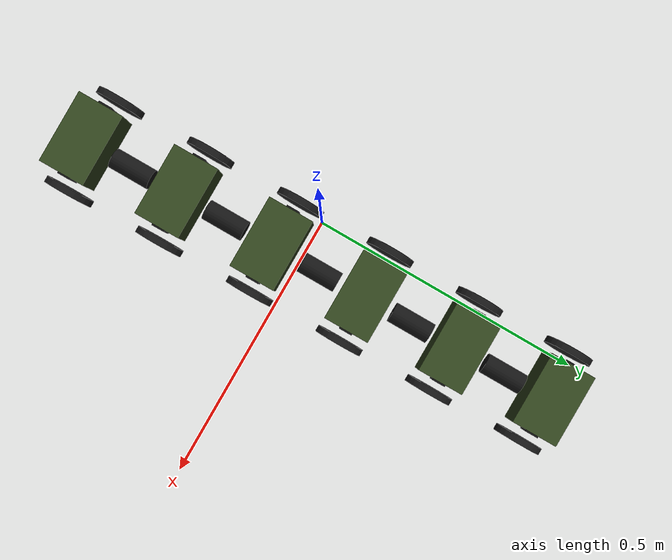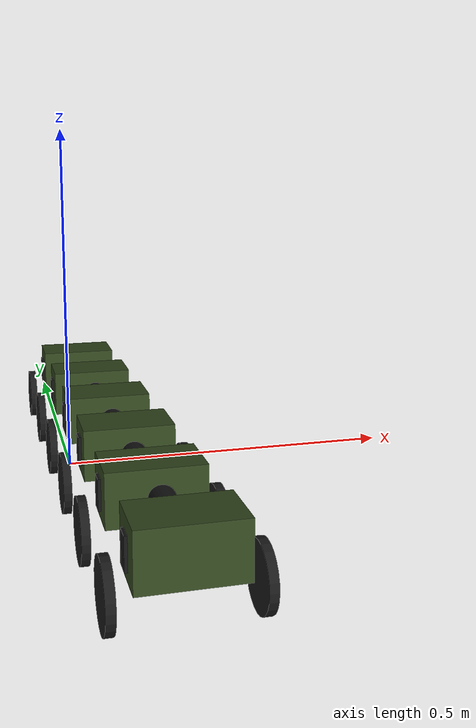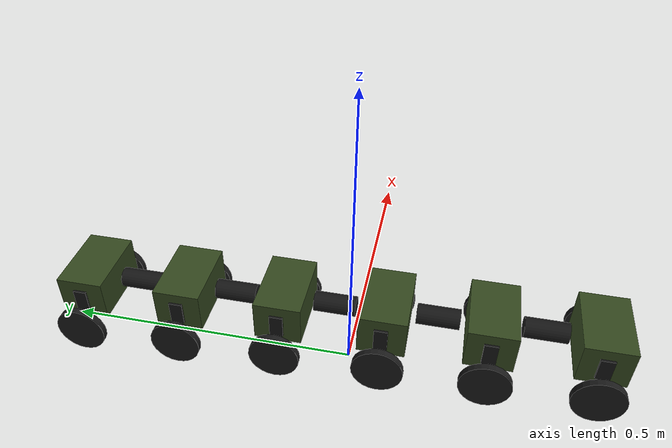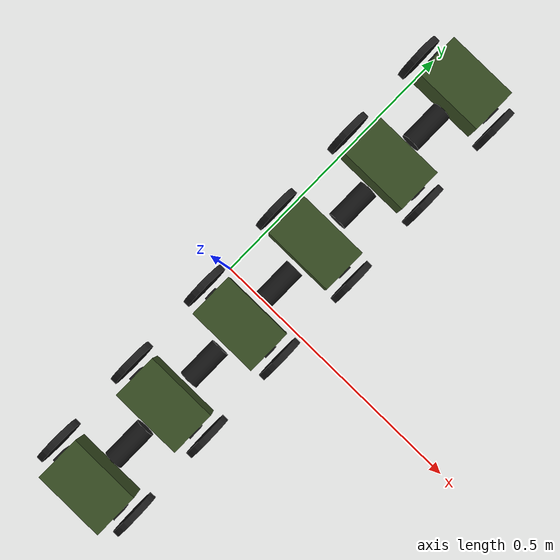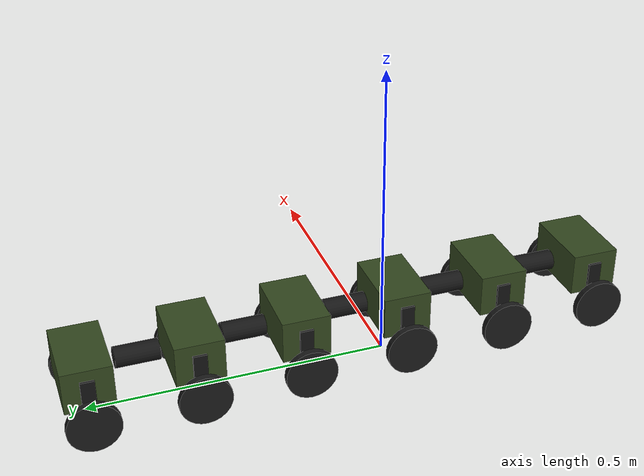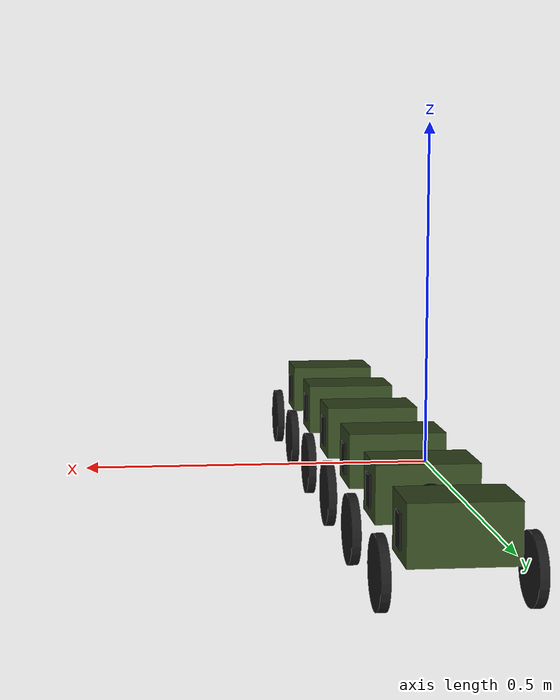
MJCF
<?xml version='1.0' encoding='UTF-8'?>
<mujoco model="o_leg_3sections">

  <option timestep="0.004" gravity="0 0 -9.81"/>
  <visual>
    <global offwidth="1920" offheight="1080"/>
  </visual>
  <asset>
    <texture name="grid" type="2d" builtin="checker" rgb1=".1 .2 .3" rgb2=".2 .3 .4" width="300" height="300"/>
    <material name="grid" texture="grid" texrepeat="30 30" reflectance="0"/>
    <material name="robot_green" rgba="0.1 0.35 0.1 1"/>
  </asset>
  <worldbody>
    <geom name="ground" type="plane" pos="0 0 -2.12" size="10 10 0.4" material="grid" friction="0.5 0 0"/>
    <light name="strong_light" pos="0 0 5" dir="0 0 -4" directional="true" diffuse="1 1 4" specular="0.3 0.3 0.6" active="true" castshadow="false" cutoff="100" exponent="10"/>
    <camera name="side_cam1" pos="4.787 -0.909 -1.537" xyaxes="-0.011 1.000 -0.000 -0.068 -0.001 0.998"/>
    <camera name="side_cam2" pos="0.783 -0.953 3.350" xyaxes="-0.008 1.000 0.000 -0.989 -0.008 0.148"/>

    <!-- ===== SECTION 3 (root) ===== -->
    <body name="body_middle6" pos="-0.00714 0.36184 0.008">
      <joint name="root_free" type="free"/>
      <geom size="0.0666575 0.041973 0.0374445" pos="0.074417 0.12845 0.025525" type="box" rgba="0.2 0.28 0.12 1"/>
      <inertial pos="0.074417 0.12845 0.025525" mass="0.08684000" diaginertia="0.00009158204 0.00016920278 0.00017961293"/>

      <body name="motor_L6" pos="0 0 0">
        <inertial pos="0.13525 0.12938 0.022634" mass="0.04388000" diaginertia="0.00000721932 0.00001081797 0.00001232792"/>
        <geom size="0.009 0.012 0.0215" pos="0.13525 0.12938 0.022634" type="box" rgba="0.08 0.08 0.08 1"/>
        <body name="o_leg_L6" pos="0 0 0">
          <joint name="knee_joint_L6" type="hinge" pos="-0.009764 0.1294 0.01076" axis="1 0 0" damping="0.5"/>
          <inertial pos="0.16407 0.12939 -0.027134" mass="0.10587964" diaginertia="0.00004860956 0.00005124607 0.00009533636"/>
          <geom name="o_leg_L6" size="0.045 0.006" pos="0.16407 0.12939 -0.027134" quat="0.707105 0 0.707108 0" type="cylinder" rgba="0.10 0.10 0.10 1"/>
        </body>
      </body>

      <body name="motor_R6" pos="0 0 0">
        <inertial pos="0.012712 0.12941 0.022604" mass="0.04388000" diaginertia="0.00000721932 0.00001081797 0.00001232792"/>
        <geom size="0.009 0.012 0.0215" pos="0.012712 0.12941 0.022604" type="box" rgba="0.08 0.08 0.08 1"/>
        <body name="o_leg_R6" pos="0 0 0">
          <joint name="knee_joint_R6" type="hinge" pos="-0.009764 0.1294 0.01076" axis="1 0 0" damping="0.5"/>
          <inertial pos="-0.016106 0.1294 -0.027164" mass="0.10587964" diaginertia="0.00004860956 0.00005124607 0.00009533636"/>
          <geom name="o_leg_R6" size="0.045 0.006" pos="-0.016106 0.1294 -0.027164" quat="0.707105 0 0.707108 0" type="cylinder" rgba="0.10 0.10 0.10 1"/>
        </body>
      </body>

      <body name="vertjoint6" pos="0 0 0">
        <joint name="vertjoint_hinge6" type="hinge" pos="0.094905 0.086975 0.02858" axis="1 0 0" range="-90 90" damping="0.5"/>
        <inertial pos="0.077976 0.038797 0.027871" mass="0.15853000" diaginertia="0.00004786090 0.00019459966 0.00019531491"/>
        <geom size="0.018 0.0375" pos="0.077976 0.038797 0.027871" quat="0.499998 -0.500002 0.5 0.5" type="cylinder" rgba="0.08 0.08 0.08 1"/>

        <body name="horzjoint6_body" pos="0 0 0">
          <joint name="horzjoint6" type="hinge" pos="0.07753 -0.009025 0.045952" axis="0 0 1" range="-90 90" damping="0.5"/>
          <inertial pos="0.07753 -0.009025 0.045952" mass="0.0004" diaginertia="0.000001 0.000001 0.000001"/>

          <!-- ===== SECTION 2 ===== -->
          <body name="body_middle5" pos="0.00357 -0.18092 0.003">
            <geom size="0.0666575 0.041973 0.0374445" pos="0.074417 0.12845 0.025525" type="box" rgba="0.2 0.28 0.12 1"/>
            <inertial pos="0.074417 0.12845 0.025525" mass="0.08684000" diaginertia="0.00009158204 0.00016920278 0.00017961293"/>

            <body name="motor_L5" pos="0 0 0">
              <inertial pos="0.13525 0.12938 0.022634" mass="0.04388000" diaginertia="0.00000721932 0.00001081797 0.00001232792"/>
              <geom size="0.009 0.012 0.0215" pos="0.13525 0.12938 0.022634" type="box" rgba="0.08 0.08 0.08 1"/>
              <body name="o_leg_L5" pos="0 0 0">
                <joint name="knee_joint_L5" type="hinge" pos="-0.009764 0.1294 0.01076" axis="1 0 0" damping="0.5"/>
                <inertial pos="0.16407 0.12939 -0.027134" mass="0.10587964" diaginertia="0.00004860956 0.00005124607 0.00009533636"/>
                <geom name="o_leg_L5" size="0.045 0.006" pos="0.16407 0.12939 -0.027134" quat="0.707105 0 0.707108 0" type="cylinder" rgba="0.10 0.10 0.10 1"/>
              </body>
            </body>

            <body name="motor_R5" pos="0 0 0">
              <inertial pos="0.012712 0.12941 0.022604" mass="0.04388000" diaginertia="0.00000721932 0.00001081797 0.00001232792"/>
              <geom size="0.009 0.012 0.0215" pos="0.012712 0.12941 0.022604" type="box" rgba="0.08 0.08 0.08 1"/>
              <body name="o_leg_R5" pos="0 0 0">
                <joint name="knee_joint_R5" type="hinge" pos="-0.009764 0.1294 0.01076" axis="1 0 0" damping="0.5"/>
                <inertial pos="-0.016106 0.1294 -0.027164" mass="0.10587964" diaginertia="0.00004860956 0.00005124607 0.00009533636"/>
                <geom name="o_leg_R5" size="0.045 0.006" pos="-0.016106 0.1294 -0.027164" quat="0.707105 0 0.707108 0" type="cylinder" rgba="0.10 0.10 0.10 1"/>
              </body>
            </body>

            <body name="vertjoint5" pos="0 0 0">
              <joint name="vertjoint_hinge5" type="hinge" pos="0.094905 0.086975 0.02858" axis="1 0 0" range="-90 90" damping="0.5"/>
              <inertial pos="0.077976 0.038797 0.027871" mass="0.15853000" diaginertia="0.00004786090 0.00019459966 0.00019531491"/>
              <geom size="0.018 0.0375" pos="0.077976 0.038797 0.027871" quat="0.499998 -0.500002 0.5 0.5" type="cylinder" rgba="0.08 0.08 0.08 1"/>

              <body name="horzjoint5_body" pos="0 0 0">
                <joint name="horzjoint5" type="hinge" pos="0.07753 -0.009025 0.045952" axis="0 0 1" range="-90 90" damping="0.5"/>
                <inertial pos="0.07753 -0.009025 0.045952" mass="0.0004" diaginertia="0.000001 0.000001 0.000001"/>

                <!-- ===== SECTION 1 ===== -->
                <body name="body_middle4" pos="0.00357 -0.18092 0.003">
                  <geom size="0.0666575 0.041973 0.0374445" pos="0.074417 0.12845 0.025525" type="box" rgba="0.2 0.28 0.12 1"/>
                  <inertial pos="0.074417 0.12845 0.025525" mass="0.08684000" diaginertia="0.00009158204 0.00016920278 0.00017961293"/>

                  <body name="motor_L4" pos="0 0 0">
                    <inertial pos="0.13525 0.12938 0.022634" mass="0.04388000" diaginertia="0.00000721932 0.00001081797 0.00001232792"/>
                    <geom size="0.009 0.012 0.0215" pos="0.13525 0.12938 0.022634" type="box" rgba="0.08 0.08 0.08 1"/>
                    <body name="o_leg_L4" pos="0 0 0">
                      <joint name="knee_joint_L4" type="hinge" pos="-0.009764 0.1294 0.01076" axis="1 0 0" damping="0.5"/>
                      <inertial pos="0.16407 0.12939 -0.027134" mass="0.10587964" diaginertia="0.00004860956 0.00005124607 0.00009533636"/>
                      <geom name="o_leg_L4" size="0.045 0.006" pos="0.16407 0.12939 -0.027134" quat="0.707105 0 0.707108 0" type="cylinder" rgba="0.10 0.10 0.10 1"/>
                    </body>
                  </body>

                  <body name="motor_R4" pos="0 0 0">
                    <inertial pos="0.012712 0.12941 0.022604" mass="0.04388000" diaginertia="0.00000721932 0.00001081797 0.00001232792"/>
                    <geom size="0.009 0.012 0.0215" pos="0.012712 0.12941 0.022604" type="box" rgba="0.08 0.08 0.08 1"/>
                    <body name="o_leg_R4" pos="0 0 0">
                      <joint name="knee_joint_R4" type="hinge" pos="-0.009764 0.1294 0.01076" axis="1 0 0" damping="0.5"/>
                      <inertial pos="-0.016106 0.1294 -0.027164" mass="0.10587964" diaginertia="0.00004860956 0.00005124607 0.00009533636"/>
                      <geom name="o_leg_R4" size="0.045 0.006" pos="-0.016106 0.1294 -0.027164" quat="0.707105 0 0.707108 0" type="cylinder" rgba="0.10 0.10 0.10 1"/>
                    </body>
                  </body>

                  <body name="vertjoint4" pos="0 0 0">
                    <joint name="vertjoint_hinge4" type="hinge" pos="0.094905 0.086975 0.02858" axis="1 0 0" range="-90 90" damping="0.5"/>
                    <inertial pos="0.077976 0.038797 0.027871" mass="0.15853000" diaginertia="0.00004786090 0.00019459966 0.00019531491"/>
                    <geom size="0.018 0.0375" pos="0.077976 0.038797 0.027871" quat="0.499998 -0.500002 0.5 0.5" type="cylinder" rgba="0.08 0.08 0.08 1"/>

                    <body name="horzjoint4_body" pos="0 0 0">
                      <joint name="horzjoint4" type="hinge" pos="0.07753 -0.009025 0.045952" axis="0 0 1" range="-90 90" damping="0.5"/>
                      <inertial pos="0.07753 -0.009025 0.045952" mass="0.0004" diaginertia="0.000001 0.000001 0.000001"/>

                      <!-- ===== SECTION 4 ===== -->
                      <body name="body_middle3" pos="0.00357 -0.18092 0.003">
                        <camera name="robot_center_scene_camera" pos="0.074 0.064 0.120" xyaxes="-1 0 0 0 0 1" fovy="90"/>
                        <geom size="0.0666575 0.041973 0.0374445" pos="0.074417 0.12845 0.025525" type="box" rgba="0.2 0.28 0.12 1"/>
                        <inertial pos="0.074417 0.12845 0.025525" mass="0.08684000" diaginertia="0.00009158204 0.00016920278 0.00017961293"/>

                        <body name="motor_L3" pos="0 0 0">
                          <inertial pos="0.13525 0.12938 0.022634" mass="0.04388000" diaginertia="0.00000721932 0.00001081797 0.00001232792"/>
                          <geom size="0.009 0.012 0.0215" pos="0.13525 0.12938 0.022634" type="box" rgba="0.08 0.08 0.08 1"/>
                          <body name="o_leg_L3" pos="0 0 0">
                            <joint name="knee_joint_L3" type="hinge" pos="-0.009764 0.1294 0.01076" axis="1 0 0" damping="0.5"/>
                            <inertial pos="0.16407 0.12939 -0.027134" mass="0.10587964" diaginertia="0.00004860956 0.00005124607 0.00009533636"/>
                            <geom name="o_leg_L3" size="0.045 0.006" pos="0.16407 0.12939 -0.027134" quat="0.707105 0 0.707108 0" type="cylinder" rgba="0.10 0.10 0.10 1"/>
                          </body>
                        </body>

                        <body name="motor_R3" pos="0 0 0">
                          <inertial pos="0.012712 0.12941 0.022604" mass="0.04388000" diaginertia="0.00000721932 0.00001081797 0.00001232792"/>
                          <geom size="0.009 0.012 0.0215" pos="0.012712 0.12941 0.022604" type="box" rgba="0.08 0.08 0.08 1"/>
                          <body name="o_leg_R3" pos="0 0 0">
                            <joint name="knee_joint_R3" type="hinge" pos="-0.009764 0.1294 0.01076" axis="1 0 0" damping="0.5"/>
                            <inertial pos="-0.016106 0.1294 -0.027164" mass="0.10587964" diaginertia="0.00004860956 0.00005124607 0.00009533636"/>
                            <geom name="o_leg_R3" size="0.045 0.006" pos="-0.016106 0.1294 -0.027164" quat="0.707105 0 0.707108 0" type="cylinder" rgba="0.10 0.10 0.10 1"/>
                          </body>
                        </body>

                        <body name="vertjoint3" pos="0 0 0">
                          <joint name="vertjoint_hinge3" type="hinge" pos="0.094905 0.086975 0.02858" axis="1 0 0" range="-90 90" damping="0.5"/>
                          <inertial pos="0.077976 0.038797 0.027871" mass="0.15853000" diaginertia="0.00004786090 0.00019459966 0.00019531491"/>
                          <geom size="0.018 0.0375" pos="0.077976 0.038797 0.027871" quat="0.499998 -0.500002 0.5 0.5" type="cylinder" rgba="0.08 0.08 0.08 1"/>

                          <body name="horzjoint3_body" pos="0 0 0">
                            <joint name="horzjoint3" type="hinge" pos="0.07753 -0.009025 0.045952" axis="0 0 1" range="-90 90" damping="0.5"/>
                            <inertial pos="0.07753 -0.009025 0.045952" mass="0.0004" diaginertia="0.000001 0.000001 0.000001"/>

                            <!-- ===== SECTION 5 ===== -->
                            <body name="body_middle2" pos="0.00357 -0.18092 0.003">
                              <geom size="0.0666575 0.041973 0.0374445" pos="0.074417 0.12845 0.025525" type="box" rgba="0.2 0.28 0.12 1"/>
                              <inertial pos="0.074417 0.12845 0.025525" mass="0.08684000" diaginertia="0.00009158204 0.00016920278 0.00017961293"/>

                              <body name="motor_L2" pos="0 0 0">
                                <inertial pos="0.13525 0.12938 0.022634" mass="0.04388000" diaginertia="0.00000721932 0.00001081797 0.00001232792"/>
                                <geom size="0.009 0.012 0.0215" pos="0.13525 0.12938 0.022634" type="box" rgba="0.08 0.08 0.08 1"/>
                                <body name="o_leg_L2" pos="0 0 0">
                                  <joint name="knee_joint_L2" type="hinge" pos="-0.009764 0.1294 0.01076" axis="1 0 0" damping="0.5"/>
                                  <inertial pos="0.16407 0.12939 -0.027134" mass="0.10587964" diaginertia="0.00004860956 0.00005124607 0.00009533636"/>
                                  <geom name="o_leg_L2" size="0.045 0.006" pos="0.16407 0.12939 -0.027134" quat="0.707105 0 0.707108 0" type="cylinder" rgba="0.10 0.10 0.10 1"/>
                                </body>
                              </body>

                              <body name="motor_R2" pos="0 0 0">
                                <inertial pos="0.012712 0.12941 0.022604" mass="0.04388000" diaginertia="0.00000721932 0.00001081797 0.00001232792"/>
                                <geom size="0.009 0.012 0.0215" pos="0.012712 0.12941 0.022604" type="box" rgba="0.08 0.08 0.08 1"/>
                                <body name="o_leg_R2" pos="0 0 0">
                                  <joint name="knee_joint_R2" type="hinge" pos="-0.009764 0.1294 0.01076" axis="1 0 0" damping="0.5"/>
                                  <inertial pos="-0.016106 0.1294 -0.027164" mass="0.10587964" diaginertia="0.00004860956 0.00005124607 0.00009533636"/>
                                  <geom name="o_leg_R2" size="0.045 0.006" pos="-0.016106 0.1294 -0.027164" quat="0.707105 0 0.707108 0" type="cylinder" rgba="0.10 0.10 0.10 1"/>
                                </body>
                              </body>

                              <body name="vertjoint2" pos="0 0 0">
                                <joint name="vertjoint_hinge2" type="hinge" pos="0.094905 0.086975 0.02858" axis="1 0 0" range="-90 90" damping="0.5"/>
                                <inertial pos="0.077976 0.038797 0.027871" mass="0.15853000" diaginertia="0.00004786090 0.00019459966 0.00019531491"/>
                                <geom size="0.018 0.0375" pos="0.077976 0.038797 0.027871" quat="0.499998 -0.500002 0.5 0.5" type="cylinder" rgba="0.08 0.08 0.08 1"/>

                                <body name="horzjoint2_body" pos="0 0 0">
                                  <joint name="horzjoint2" type="hinge" pos="0.07753 -0.009025 0.045952" axis="0 0 1" range="-90 90" damping="0.5"/>
                                  <inertial pos="0.07753 -0.009025 0.045952" mass="0.0004" diaginertia="0.000001 0.000001 0.000001"/>

                                  <!-- ===== SECTION 6 (tail) ===== -->
                                  <body name="body_middle1" pos="0.00357 -0.18092 0.003">
                                    <geom size="0.0666575 0.041973 0.0374445" pos="0.074417 0.12845 0.025525" type="box" rgba="0.2 0.28 0.12 1"/>
                                    <inertial pos="0.074417 0.12845 0.025525" mass="0.08684000" diaginertia="0.00009158204 0.00016920278 0.00017961293"/>

                                    <body name="motor_L1" pos="0 0 0">
                                      <inertial pos="0.13525 0.12938 0.022634" mass="0.04388000" diaginertia="0.00000721932 0.00001081797 0.00001232792"/>
                                      <geom size="0.009 0.012 0.0215" pos="0.13525 0.12938 0.022634" type="box" rgba="0.08 0.08 0.08 1"/>
                                      <body name="o_leg_L1" pos="0 0 0">
                                        <joint name="knee_joint_L1" type="hinge" pos="-0.009764 0.1294 0.01076" axis="1 0 0" damping="0.5"/>
                                        <inertial pos="0.16407 0.12939 -0.027134" mass="0.10587964" diaginertia="0.00004860956 0.00005124607 0.00009533636"/>
                                        <geom name="o_leg_L1" size="0.045 0.006" pos="0.16407 0.12939 -0.027134" quat="0.707105 0 0.707108 0" type="cylinder" rgba="0.10 0.10 0.10 1"/>
                                      </body>
                                    </body>

                                    <body name="motor_R1" pos="0 0 0">
                                      <inertial pos="0.012712 0.12941 0.022604" mass="0.04388000" diaginertia="0.00000721932 0.00001081797 0.00001232792"/>
                                      <geom size="0.009 0.012 0.0215" pos="0.012712 0.12941 0.022604" type="box" rgba="0.08 0.08 0.08 1"/>
                                      <body name="o_leg_R1" pos="0 0 0">
                                        <joint name="knee_joint_R1" type="hinge" pos="-0.009764 0.1294 0.01076" axis="1 0 0" damping="0.5"/>
                                        <inertial pos="-0.016106 0.1294 -0.027164" mass="0.10587964" diaginertia="0.00004860956 0.00005124607 0.00009533636"/>
                                        <geom name="o_leg_R1" size="0.045 0.006" pos="-0.016106 0.1294 -0.027164" quat="0.707105 0 0.707108 0" type="cylinder" rgba="0.10 0.10 0.10 1"/>
                                      </body>
                                    </body>

                                  </body>
                                </body>
                              </body>
                            </body>
                          </body>
                        </body>
                      </body>
                    </body>
                  </body>
                </body>
              </body>
            </body>
          </body>
        </body>
      </body>
    </body>
  </worldbody>

  <actuator>
    <position name="knee_L6" joint="knee_joint_L6" kp="10" forcerange="-4 4"/>
    <position name="knee_R6" joint="knee_joint_R6" kp="10" forcerange="-4 4"/>
    <position name="vertjoint6" joint="vertjoint_hinge6" ctrlrange="-100 100" kp="10" forcerange="-5 5"/>
    <position name="horzjoint6" joint="horzjoint6" ctrlrange="-100 100" kp="10"/>

    <position name="knee_L5" joint="knee_joint_L5" kp="10" forcerange="-4 4"/>
    <position name="knee_R5" joint="knee_joint_R5" kp="10" forcerange="-4 4"/>
    <position name="vertjoint5" joint="vertjoint_hinge5" ctrlrange="-100 100" kp="10" forcerange="-5 5"/>
    <position name="horzjoint5" joint="horzjoint5" ctrlrange="-100 100" kp="10"/>

    <position name="knee_L4" joint="knee_joint_L4" kp="10" forcerange="-4 4"/>
    <position name="knee_R4" joint="knee_joint_R4" kp="10" forcerange="-4 4"/>
    <position name="vertjoint4" joint="vertjoint_hinge4" ctrlrange="-100 100" kp="10" forcerange="-5 5"/>
    <position name="horzjoint4" joint="horzjoint4" ctrlrange="-100 100" kp="10"/>

    <position name="knee_L3" joint="knee_joint_L3" kp="10" forcerange="-4 4"/>
    <position name="knee_R3" joint="knee_joint_R3" kp="10" forcerange="-4 4"/>
    <position name="vertjoint3" joint="vertjoint_hinge3" ctrlrange="-100 100" kp="10" forcerange="-5 5"/>
    <position name="horzjoint3" joint="horzjoint3" ctrlrange="-100 100" kp="10"/>

    <position name="knee_L2" joint="knee_joint_L2" kp="10" forcerange="-4 4"/>
    <position name="knee_R2" joint="knee_joint_R2" kp="10" forcerange="-4 4"/>
    <position name="vertjoint2" joint="vertjoint_hinge2" ctrlrange="-100 100" kp="10" forcerange="-5 5"/>
    <position name="horzjoint2" joint="horzjoint2" ctrlrange="-100 100" kp="10"/>

    <position name="knee_L1" joint="knee_joint_L1" kp="10" forcerange="-4 4"/>
    <position name="knee_R1" joint="knee_joint_R1" kp="10" forcerange="-4 4"/>
  </actuator>
</mujoco>
